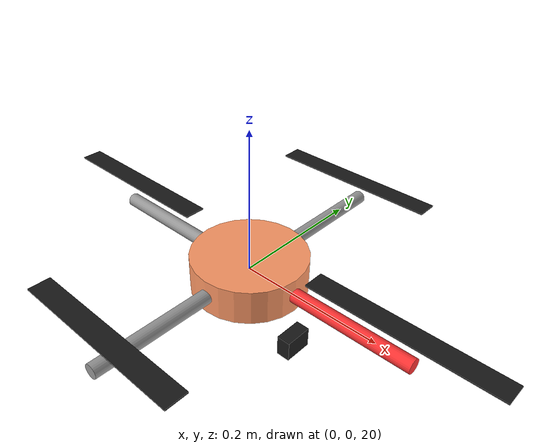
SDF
<?xml version="1.0" ?>
<sdf version="1.7">
  <model name="mrsim-quad-unico">
    <pose>0.0 0.0 20.0 0.0 0.0 0.0</pose>
    <link name="base">
      <inertial>
        <mass>1.0</mass>
        <inertia>
          <ixx>0.015</ixx><ixy>0</ixy><ixz>0</ixz>
          <iyy>0.015</iyy><iyz>0</iyz>
          <izz>0.007</izz>
        </inertia>
      </inertial>

      <collision name="base_collision">
        <geometry>
          <cylinder><radius>0.1</radius><length>0.05</length></cylinder>
        </geometry>
      </collision>
      <collision name="land_1_collision">
        <pose>0.1 0 0 0 0 0</pose>
        <geometry>
          <sphere><radius>0.03</radius></sphere>
        </geometry>
      </collision>
      <collision name="land_2_collision">
        <pose>-0.05 0.086 0 0 0 0</pose>
        <geometry>
          <sphere><radius>0.03</radius></sphere>
        </geometry>
      </collision>
      <collision name="land_3_collision">
        <pose>-0.05 -0.086 0 0 0 0</pose>
        <geometry>
          <sphere><radius>0.03</radius></sphere>
        </geometry>
      </collision>

      <visual name="body_visual">
        <geometry>
          <cylinder><radius>0.08</radius><length>0.05</length></cylinder>
        </geometry>
        <material>
          <ambient>1.0 0.6 0.4 1</ambient>
          <diffuse>1.0 0.6 0.4 1</diffuse>
        </material>
      </visual>

      <visual name="arm-1_visual">
        <pose>0.125 0 0 0 1.5708 0</pose>
        <geometry>
          <cylinder><radius>0.01</radius><length>0.25</length></cylinder>
        </geometry>
        <material>
          <ambient>1.0 0.2 0.2 1</ambient>
          <diffuse>1.0 0.2 0.2 1</diffuse>
        </material>
      </visual>
      <visual name="arm-2_visual">
        <pose>0 0.125 0 0 1.5708 1.5708</pose>
        <geometry>
          <cylinder><radius>0.01</radius><length>0.25</length></cylinder>
        </geometry>
        <material>
          <ambient>0.6 0.6 0.6 1</ambient>
          <diffuse>0.6 0.6 0.6 1</diffuse>
        </material>
      </visual>
      <visual name="arm-3_visual">
        <pose>-0.125 0 0 0 1.5708 0</pose>
        <geometry>
          <cylinder><radius>0.01</radius><length>0.25</length></cylinder>
        </geometry>
        <material>
          <ambient>0.6 0.6 0.6 1</ambient>
          <diffuse>0.6 0.6 0.6 1</diffuse>
        </material>
      </visual>
      <visual name="arm-4_visual">
        <pose>0 -0.125 0 0 1.5708 1.5708</pose>
        <geometry>
          <cylinder><radius>0.01</radius><length>0.25</length></cylinder>
        </geometry>
        <material>
          <ambient>0.6 0.6 0.6 1</ambient>
          <diffuse>0.6 0.6 0.6 1</diffuse>
        </material>
      </visual>
      <sensor type="camera" name="camera">
        <pose>0.08 0 -0.08 0 0 0</pose>
        <camera>
          <horizontal_fov>1.047</horizontal_fov>
          <image>
            <width>640</width>
            <height>480</height>
            <format>R8G8B8</format> <!-- facoltativo ma utile -->
          </image>
          <clip><near>0.1</near><far>100</far></clip>
        </camera>
        <always_on>true</always_on>
        <update_rate>30</update_rate>
        <visualize>true</visualize>
        <topic>/camera</topic>
      </sensor>
      <visual name="camera_visual">
        <pose>0.08 0 -0.08 0 0 0</pose>
        <geometry>
          <box><size>0.02 0.04 0.03</size></box>
        </geometry>
        <material>
          <ambient>0.1 0.1 0.1 1</ambient>
          <diffuse>0.1 0.1 0.1 1</diffuse>
        </material>
      </visual>

    </link>

    <!-- Rotor 1 Definition -->
    <link name="rotor-1_propeller">
      <pose>0.23 0 0.04 0 0 0</pose>
      <inertial>
        <mass>0.07</mass>
        <inertia>
          <ixx>4e-5</ixx><ixy>0</ixy><ixz>0</ixz>
          <iyy>4e-5</iyy><iyz>0</iyz>
          <izz>8e-5</izz>
        </inertia>
      </inertial>
      <collision name="rotor-1_collision">
        <geometry>
          <cylinder><radius>0.127</radius><length>0.002</length></cylinder>
        </geometry>
      </collision>
      <visual name="rotor-1_visual">
        <geometry>
          <box><size>0.25 0.03 0.002</size></box>
        </geometry>
        <material>
          <ambient>0.1 0.1 0.1 1</ambient>
          <diffuse>0.1 0.1 0.1 1</diffuse>
        </material>
      </visual>
    </link>
    <joint name="motor-1" type="revolute">
      <parent>base</parent>
      <child>rotor-1_propeller</child>
      <axis><xyz>0 0 1</xyz></axis>
    </joint>

    <!-- Rotor 2 Definition -->
    <link name="rotor-2_propeller">
      <pose>0 0.23 0.04 0 0 0</pose>
      <inertial>
        <mass>0.07</mass>
        <inertia>
          <ixx>4e-5</ixx><ixy>0</ixy><ixz>0</ixz>
          <iyy>4e-5</iyy><iyz>0</iyz>
          <izz>8e-5</izz>
        </inertia>
      </inertial>
      <collision name="rotor-2_collision">
        <geometry>
          <cylinder><radius>0.127</radius><length>0.002</length></cylinder>
        </geometry>
      </collision>
      <visual name="rotor-2_visual">
        <geometry>
          <box><size>0.25 0.03 0.002</size></box>
        </geometry>
        <material>
          <ambient>0.1 0.1 0.1 1</ambient>
          <diffuse>0.1 0.1 0.1 1</diffuse>
        </material>
      </visual>
    </link>
    <joint name="motor-2" type="revolute">
      <parent>base</parent>
      <child>rotor-2_propeller</child>
      <axis><xyz>0 0 1</xyz></axis>
    </joint>

    <!-- Rotor 3 Definition -->
    <link name="rotor-3_propeller">
      <pose>-0.23 0 0.04 0 0 0</pose>
      <inertial>
        <mass>0.07</mass>
        <inertia>
          <ixx>4e-5</ixx><ixy>0</ixy><ixz>0</ixz>
          <iyy>4e-5</iyy><iyz>0</iyz>
          <izz>8e-5</izz>
        </inertia>
      </inertial>
      <collision name="rotor-3_collision">
        <geometry>
          <cylinder><radius>0.127</radius><length>0.002</length></cylinder>
        </geometry>
      </collision>
      <visual name="rotor-3_visual">
        <geometry>
          <box><size>0.25 0.03 0.002</size></box>
        </geometry>
        <material>
          <ambient>0.1 0.1 0.1 1</ambient>
          <diffuse>0.1 0.1 0.1 1</diffuse>
        </material>
      </visual>
    </link>
    <joint name="motor-3" type="revolute">
      <parent>base</parent>
      <child>rotor-3_propeller</child>
      <axis><xyz>0 0 1</xyz></axis>
    </joint>

    <!-- Rotor 4 Definition -->
    <link name="rotor-4_propeller">
      <pose>0 -0.23 0.04 0 0 0</pose>
      <inertial>
        <mass>0.07</mass>
        <inertia>
          <ixx>4e-5</ixx><ixy>0</ixy><ixz>0</ixz>
          <iyy>4e-5</iyy><iyz>0</iyz>
          <izz>8e-5</izz>
        </inertia>
      </inertial>
      <collision name="rotor-4_collision">
        <geometry>
          <cylinder><radius>0.127</radius><length>0.002</length></cylinder>
        </geometry>
      </collision>
      <visual name="rotor-4_visual">
        <geometry>
          <box><size>0.25 0.03 0.002</size></box>
        </geometry>
        <material>
          <ambient>0.1 0.1 0.1 1</ambient>
          <diffuse>0.1 0.1 0.1 1</diffuse>
        </material>
      </visual>
    </link>
    <joint name="motor-4" type="revolute">
      <parent>base</parent>
      <child>rotor-4_propeller</child>
      <axis><xyz>0 0 1</xyz></axis>
    </joint>

    <!-- optionnally specify an explicit allocation matrix -->

    <!-- Plugin personalizzato per la conversione wrench-motore -->

    <plugin
      name="mrsim_gazebo_sim::MrsimDroneIgnPlugin"
      filename="libmrsim_drone_ign_plugin.so">
      <wrench_topic>/model/qr4/wrench_cmd</wrench_topic>
      <motor_speed_topic>/gazebo/command/motor_speed</motor_speed_topic>
      <rotors>
        <cf>6.5e-04</cf>
        <ct>1e-05</ct>
        <rotor><joint spin="cw">motor-1</joint></rotor>
        <rotor><joint spin="ccw">motor-2</joint></rotor>
        <rotor><joint spin="cw">motor-3</joint></rotor>
        <rotor><joint spin="ccw">motor-4</joint></rotor>
      </rotors>
    </plugin>

    <!-- Plugin di Ignition per la fisica dei motori (1 per ogni rotore) -->

    <!-- Plugin per Rotore 1 -->
    <plugin filename="ignition-gazebo-multicopter-motor-model-system"
      name="ignition::gazebo::systems::MulticopterMotorModel">
      <robotNamespace>qr4</robotNamespace>
      <jointName>motor-1</jointName>
      <linkName>rotor-1_propeller</linkName>
      <turningDirection>cw</turningDirection>
      <momentConstant>0.0153846</momentConstant>  <!-- = ct/cf -->
      <commandSubTopic>gazebo/command/motor_speed</commandSubTopic>
      <motorNumber>0</motorNumber>
      <motorSpeedPubTopic>motor_speed/0</motorSpeedPubTopic>
      <timeConstantUp>0.0125</timeConstantUp>
      <timeConstantDown>0.025</timeConstantDown>
      <maxRotVelocity>200.0</maxRotVelocity>
      <motorConstant>6.5e-04</motorConstant>     <!--cf-->
      <rollingMomentCoefficient>0</rollingMomentCoefficient>
      <rotorDragCoefficient>0</rotorDragCoefficient>
      <rotorVelocitySlowdownSim>1</rotorVelocitySlowdownSim>
      <motorType>velocity</motorType>
    </plugin>

    <!-- Plugin per Rotore 2 -->
    <plugin filename="ignition-gazebo-multicopter-motor-model-system"
      name="ignition::gazebo::systems::MulticopterMotorModel">
      <robotNamespace>qr4</robotNamespace>
      <jointName>motor-2</jointName>
      <linkName>rotor-2_propeller</linkName>
      <turningDirection>ccw</turningDirection>
      <momentConstant>0.0153846</momentConstant>  <!-- = ct/cf -->
      <commandSubTopic>gazebo/command/motor_speed</commandSubTopic>
      <motorNumber>1</motorNumber>
      <motorSpeedPubTopic>motor_speed/1</motorSpeedPubTopic>
      <timeConstantUp>0.0125</timeConstantUp>
      <timeConstantDown>0.025</timeConstantDown>
      <maxRotVelocity>200.0</maxRotVelocity>
      <motorConstant>6.5e-04</motorConstant>     <!--cf-->
      <rollingMomentCoefficient>0</rollingMomentCoefficient>
      <rotorDragCoefficient>0</rotorDragCoefficient>
      <rotorVelocitySlowdownSim>1</rotorVelocitySlowdownSim>
      <motorType>velocity</motorType>
    </plugin>

    <!-- Plugin per Rotore 3 -->
    <plugin filename="ignition-gazebo-multicopter-motor-model-system"
      name="ignition::gazebo::systems::MulticopterMotorModel">
      <robotNamespace>qr4</robotNamespace>
      <jointName>motor-3</jointName>
      <linkName>rotor-3_propeller</linkName>
      <turningDirection>cw</turningDirection>
      <momentConstant>0.0153846</momentConstant>  <!-- = ct/cf -->
      <commandSubTopic>gazebo/command/motor_speed</commandSubTopic>
      <motorNumber>2</motorNumber>
      <motorSpeedPubTopic>motor_speed/2</motorSpeedPubTopic>
      <timeConstantUp>0.0125</timeConstantUp>
      <timeConstantDown>0.025</timeConstantDown>
      <maxRotVelocity>200.0</maxRotVelocity>
      <motorConstant>6.5e-04</motorConstant>     <!--cf-->
      <rollingMomentCoefficient>0</rollingMomentCoefficient>
      <rotorDragCoefficient>0</rotorDragCoefficient>
      <rotorVelocitySlowdownSim>1</rotorVelocitySlowdownSim>
      <motorType>velocity</motorType>
    </plugin>

    <!-- Plugin per Rotore 4 -->
    <plugin filename="ignition-gazebo-multicopter-motor-model-system"
      name="ignition::gazebo::systems::MulticopterMotorModel">
      <robotNamespace>qr4</robotNamespace>
      <jointName>motor-4</jointName>
      <linkName>rotor-4_propeller</linkName>
      <turningDirection>ccw</turningDirection>
      <momentConstant>0.0153846</momentConstant>  <!-- = ct/cf -->
      <commandSubTopic>gazebo/command/motor_speed</commandSubTopic>
      <motorNumber>3</motorNumber>
      <motorSpeedPubTopic>motor_speed/3</motorSpeedPubTopic>
      <timeConstantUp>0.0125</timeConstantUp>
      <timeConstantDown>0.025</timeConstantDown>
      <maxRotVelocity>200.0</maxRotVelocity>
      <motorConstant>6.5e-04</motorConstant>     <!--cf-->
      <rollingMomentCoefficient>0</rollingMomentCoefficient>
      <rotorDragCoefficient>0</rotorDragCoefficient>
      <rotorVelocitySlowdownSim>1</rotorVelocitySlowdownSim>
      <motorType>velocity</motorType>
    </plugin>

    <plugin
      filename='libignition-gazebo6-odometry-publisher-system.so'
      name='ignition::gazebo::systems::OdometryPublisher'>
      <odom_topic>/model/qr4/odometry</odom_topic>
      <robot_base_frame>base</robot_base_frame>
      <odom_publish_frequency>200</odom_publish_frequency>
      <odom_frame>world</odom_frame>
      <dimensions>3</dimensions>
    </plugin>

    <plugin name="ignition::gazebo::systems::Sensors" filename="libignition-gazebo-sensors-system">
      <render_engine>ogre2</render_engine>
    </plugin>

  </model>
</sdf>
